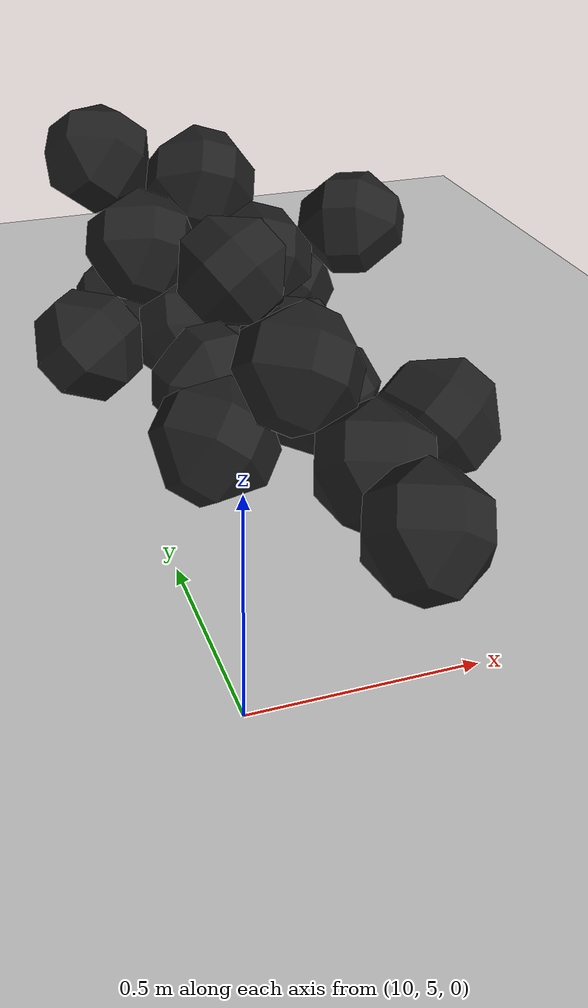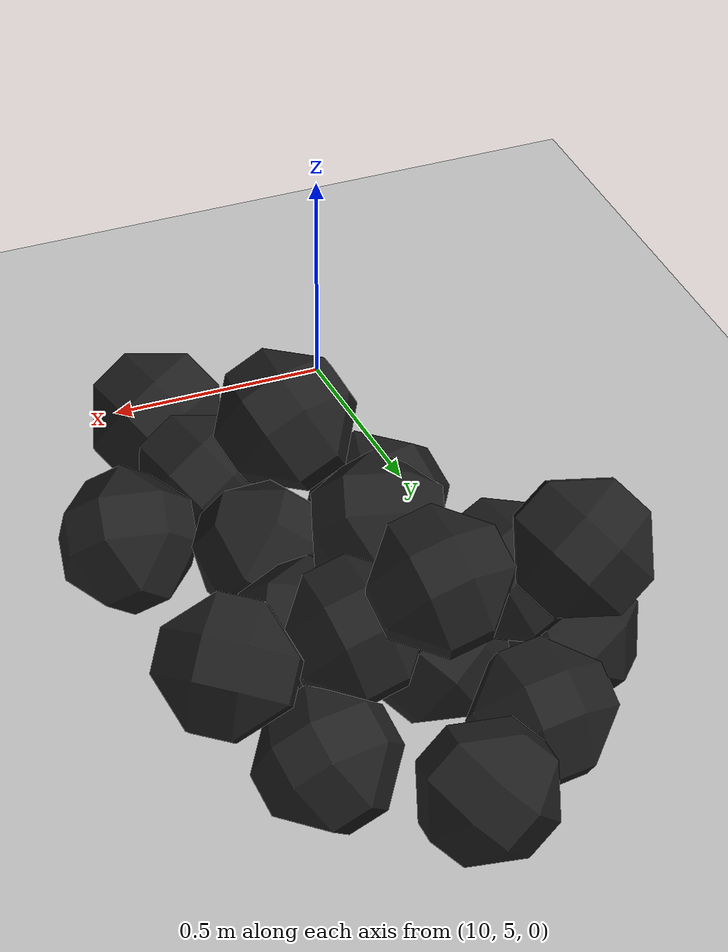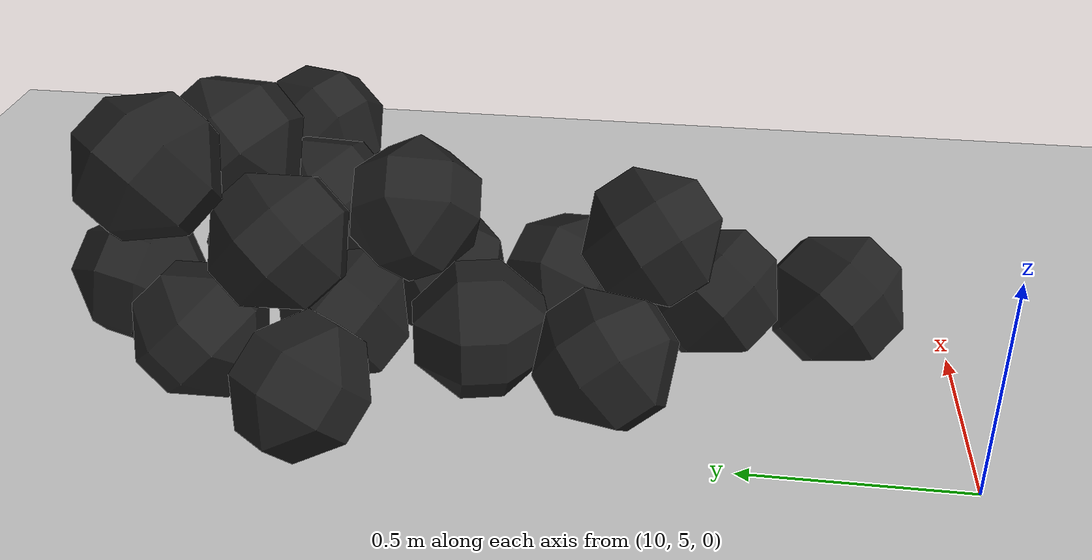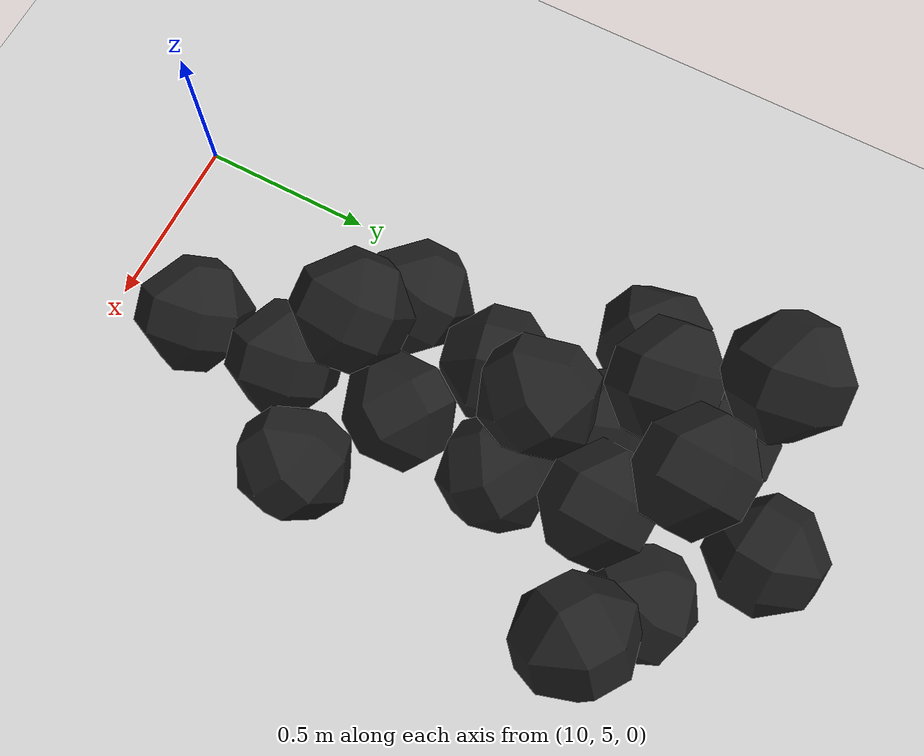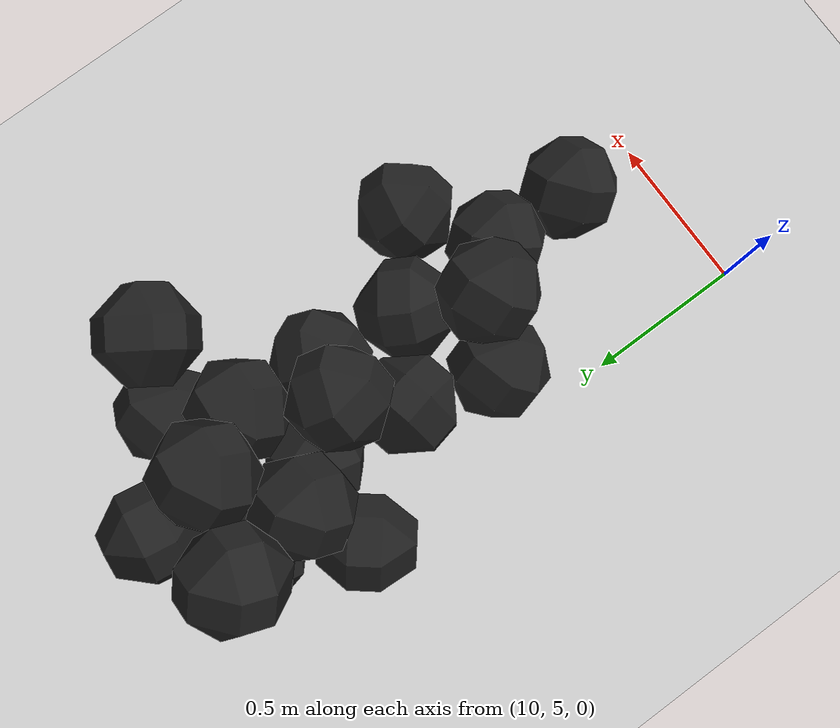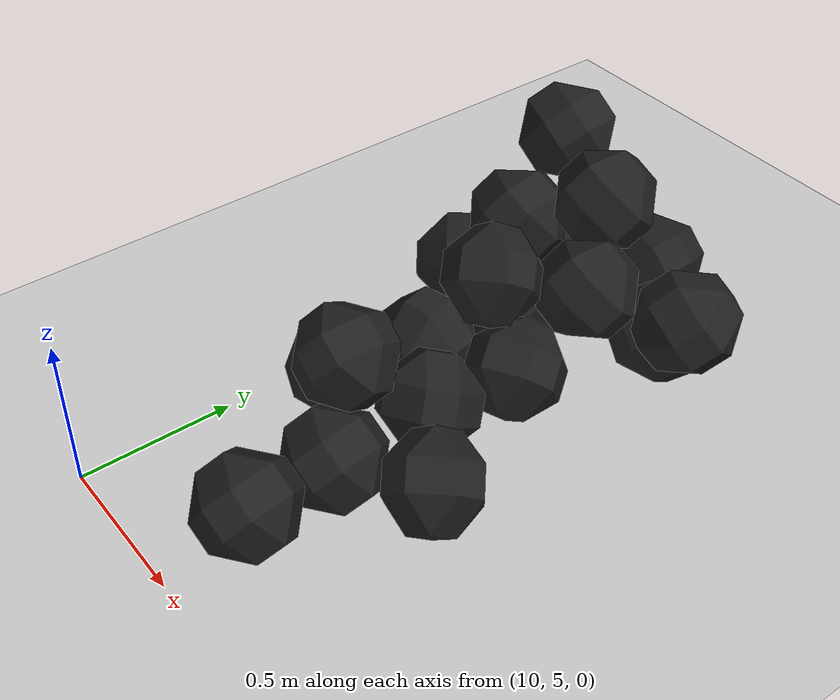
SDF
<sdf version="1.7">
 <world name="default">
  <model name="ground_plane">
   <static>1</static>
   <link name="link">
    <collision name="collision">
     <geometry><plane><normal>0 0 1</normal><size>100 100</size></plane></geometry>
     <surface><friction><ode><mu>100</mu><mu2>50</mu2></ode></friction></surface>
    </collision>
    <visual name="visual">
     <cast_shadows>0</cast_shadows>
     <geometry><plane><normal>0 0 1</normal><size>100 100</size></plane></geometry>
     <material>
      <script><uri>file://media/materials/scripts/gazebo.material</uri><name>Gazebo/Grey</name></script>
     </material>
    </visual>
   </link>
  </model>
  <model name="haoduomiantiaa_1">
   <link name="link_0">
    <inertial>
     <mass>0.2</mass>
     <inertia>
      <ixx>0.166667</ixx>
      <ixy>0</ixy>
      <ixz>0</ixz>
      <iyy>0.166667</iyy>
      <iyz>0</iyz>
      <izz>0.166667</izz>
     </inertia>
    </inertial>
    <visual name="visual">
     <geometry>
      <mesh>
       <uri>/home/lihaoyang/catkin_ws/src/pudong_gazebo/world/stl/haoduomianti.stl</uri>
       <scale>1 1 1</scale>
      </mesh>
     </geometry>
     <material>
      <lighting>1</lighting>
      <script><uri>file://media/materials/scripts/gazebo.material</uri><name>Gazebo/Black</name></script>
      <shader type="pixel"><normal_map>__default__</normal_map></shader>
      <ambient>0.3 0.3 0.3 1</ambient>
      <diffuse>0.7 0.7 0.7 1</diffuse>
      <specular>0.01 0.01 0.01 1</specular>
      <emissive>0 0 0 1</emissive>
     </material>
    </visual>
    <collision name="collision">
     <geometry>
      <mesh>
       <uri>/home/lihaoyang/catkin_ws/src/pudong_gazebo/world/stl/haoduomianti.stl</uri>
       <scale>1 1 1</scale>
      </mesh>
     </geometry>
     <surface>
      <friction>
       <ode><mu>1</mu><mu2>1</mu2><fdir1>0 0 0</fdir1><slip1>0</slip1><slip2>0</slip2></ode>
       <torsional>
        <coefficient>1</coefficient>
        <patch_radius>0</patch_radius>
        <surface_radius>0</surface_radius>
        <use_patch_radius>1</use_patch_radius>
        <ode><slip>0</slip></ode>
       </torsional>
      </friction>
      <bounce><restitution_coefficient>0</restitution_coefficient><threshold>1e+06</threshold></bounce>
      <contact>
       <collide_without_contact>0</collide_without_contact>
       <collide_without_contact_bitmask>1</collide_without_contact_bitmask>
       <collide_bitmask>1</collide_bitmask>
       <ode>
        <soft_cfm>0</soft_cfm>
        <soft_erp>0.2</soft_erp>
        <kp>1e+13</kp>
        <kd>1</kd>
        <max_vel>0.01</max_vel>
        <min_depth>0</min_depth>
       </ode>
       <bullet>
        <split_impulse>1</split_impulse>
        <split_impulse_penetration_threshold>-0.01</split_impulse_penetration_threshold>
        <soft_cfm>0</soft_cfm>
        <soft_erp>0.2</soft_erp>
        <kp>1e+13</kp>
        <kd>1</kd>
       </bullet>
      </contact>
     </surface>
    </collision>
   </link>
   <static>0</static>
   <pose>10.6609 6.68022 -0.115567 0.785417 -0.615482 0.743419</pose>
  </model>
  <model name="haoduomiantiaa_13">
   <link name="link_0">
    <inertial>
     <mass>0.2</mass>
     <inertia>
      <ixx>0.166667</ixx>
      <ixy>0</ixy>
      <ixz>0</ixz>
      <iyy>0.166667</iyy>
      <iyz>0</iyz>
      <izz>0.166667</izz>
     </inertia>
    </inertial>
    <visual name="visual">
     <geometry>
      <mesh>
       <uri>/home/lihaoyang/catkin_ws/src/pudong_gazebo/world/stl/haoduomianti.stl</uri>
       <scale>1 1 1</scale>
      </mesh>
     </geometry>
     <material>
      <lighting>1</lighting>
      <script><uri>file://media/materials/scripts/gazebo.material</uri><name>Gazebo/Black</name></script>
      <shader type="pixel"><normal_map>__default__</normal_map></shader>
      <ambient>0.3 0.3 0.3 1</ambient>
      <diffuse>0.7 0.7 0.7 1</diffuse>
      <specular>0.01 0.01 0.01 1</specular>
      <emissive>0 0 0 1</emissive>
     </material>
    </visual>
    <collision name="collision">
     <geometry>
      <mesh>
       <uri>/home/lihaoyang/catkin_ws/src/pudong_gazebo/world/stl/haoduomianti.stl</uri>
       <scale>1 1 1</scale>
      </mesh>
     </geometry>
     <surface>
      <friction>
       <ode><mu>1</mu><mu2>1</mu2><fdir1>0 0 0</fdir1><slip1>0</slip1><slip2>0</slip2></ode>
       <torsional>
        <coefficient>1</coefficient>
        <patch_radius>0</patch_radius>
        <surface_radius>0</surface_radius>
        <use_patch_radius>1</use_patch_radius>
        <ode><slip>0</slip></ode>
       </torsional>
      </friction>
      <bounce><restitution_coefficient>0</restitution_coefficient><threshold>1e+06</threshold></bounce>
      <contact>
       <collide_without_contact>0</collide_without_contact>
       <collide_without_contact_bitmask>1</collide_without_contact_bitmask>
       <collide_bitmask>1</collide_bitmask>
       <ode>
        <soft_cfm>0</soft_cfm>
        <soft_erp>0.2</soft_erp>
        <kp>1e+13</kp>
        <kd>1</kd>
        <max_vel>0.01</max_vel>
        <min_depth>0</min_depth>
       </ode>
       <bullet>
        <split_impulse>1</split_impulse>
        <split_impulse_penetration_threshold>-0.01</split_impulse_penetration_threshold>
        <soft_cfm>0</soft_cfm>
        <soft_erp>0.2</soft_erp>
        <kp>1e+13</kp>
        <kd>1</kd>
       </bullet>
      </contact>
     </surface>
    </collision>
   </link>
   <static>0</static>
   <pose>10.3819 6.81247 -0.088509 1.31188 -0.768326 -3.09991</pose>
  </model>
  <model name="haoduomiantiaa_33">
   <link name="link_0">
    <inertial>
     <mass>0.2</mass>
     <inertia>
      <ixx>0.166667</ixx>
      <ixy>0</ixy>
      <ixz>0</ixz>
      <iyy>0.166667</iyy>
      <iyz>0</iyz>
      <izz>0.166667</izz>
     </inertia>
    </inertial>
    <visual name="visual">
     <geometry>
      <mesh>
       <uri>/home/lihaoyang/catkin_ws/src/pudong_gazebo/world/stl/haoduomianti.stl</uri>
       <scale>1 1 1</scale>
      </mesh>
     </geometry>
     <material>
      <lighting>1</lighting>
      <script><uri>file://media/materials/scripts/gazebo.material</uri><name>Gazebo/Black</name></script>
      <shader type="pixel"><normal_map>__default__</normal_map></shader>
      <ambient>0.3 0.3 0.3 1</ambient>
      <diffuse>0.7 0.7 0.7 1</diffuse>
      <specular>0.01 0.01 0.01 1</specular>
      <emissive>0 0 0 1</emissive>
     </material>
    </visual>
    <collision name="collision">
     <geometry>
      <mesh>
       <uri>/home/lihaoyang/catkin_ws/src/pudong_gazebo/world/stl/haoduomianti.stl</uri>
       <scale>1 1 1</scale>
      </mesh>
     </geometry>
     <surface>
      <friction>
       <ode><mu>1</mu><mu2>1</mu2><fdir1>0 0 0</fdir1><slip1>0</slip1><slip2>0</slip2></ode>
       <torsional>
        <coefficient>1</coefficient>
        <patch_radius>0</patch_radius>
        <surface_radius>0</surface_radius>
        <use_patch_radius>1</use_patch_radius>
        <ode><slip>0</slip></ode>
       </torsional>
      </friction>
      <bounce><restitution_coefficient>0</restitution_coefficient><threshold>1e+06</threshold></bounce>
      <contact>
       <collide_without_contact>0</collide_without_contact>
       <collide_without_contact_bitmask>1</collide_without_contact_bitmask>
       <collide_bitmask>1</collide_bitmask>
       <ode>
        <soft_cfm>0</soft_cfm>
        <soft_erp>0.2</soft_erp>
        <kp>1e+13</kp>
        <kd>1</kd>
        <max_vel>0.01</max_vel>
        <min_depth>0</min_depth>
       </ode>
       <bullet>
        <split_impulse>1</split_impulse>
        <split_impulse_penetration_threshold>-0.01</split_impulse_penetration_threshold>
        <soft_cfm>0</soft_cfm>
        <soft_erp>0.2</soft_erp>
        <kp>1e+13</kp>
        <kd>1</kd>
       </bullet>
      </contact>
     </surface>
    </collision>
   </link>
   <static>0</static>
   <pose>10.2861 6.69779 -0.087637 0.246186 -0.770135 1.40953</pose>
  </model>
  <model name="haoduomiantiaa_34">
   <link name="link_0">
    <inertial>
     <mass>0.2</mass>
     <inertia>
      <ixx>0.166667</ixx>
      <ixy>0</ixy>
      <ixz>0</ixz>
      <iyy>0.166667</iyy>
      <iyz>0</iyz>
      <izz>0.166667</izz>
     </inertia>
    </inertial>
    <visual name="visual">
     <geometry>
      <mesh>
       <uri>/home/lihaoyang/catkin_ws/src/pudong_gazebo/world/stl/haoduomianti.stl</uri>
       <scale>1 1 1</scale>
      </mesh>
     </geometry>
     <material>
      <lighting>1</lighting>
      <script><uri>file://media/materials/scripts/gazebo.material</uri><name>Gazebo/Black</name></script>
      <shader type="pixel"><normal_map>__default__</normal_map></shader>
      <ambient>0.3 0.3 0.3 1</ambient>
      <diffuse>0.7 0.7 0.7 1</diffuse>
      <specular>0.01 0.01 0.01 1</specular>
      <emissive>0 0 0 1</emissive>
     </material>
    </visual>
    <collision name="collision">
     <geometry>
      <mesh>
       <uri>/home/lihaoyang/catkin_ws/src/pudong_gazebo/world/stl/haoduomianti.stl</uri>
       <scale>1 1 1</scale>
      </mesh>
     </geometry>
     <surface>
      <friction>
       <ode><mu>1</mu><mu2>1</mu2><fdir1>0 0 0</fdir1><slip1>0</slip1><slip2>0</slip2></ode>
       <torsional>
        <coefficient>1</coefficient>
        <patch_radius>0</patch_radius>
        <surface_radius>0</surface_radius>
        <use_patch_radius>1</use_patch_radius>
        <ode><slip>0</slip></ode>
       </torsional>
      </friction>
      <bounce><restitution_coefficient>0</restitution_coefficient><threshold>1e+06</threshold></bounce>
      <contact>
       <collide_without_contact>0</collide_without_contact>
       <collide_without_contact_bitmask>1</collide_without_contact_bitmask>
       <collide_bitmask>1</collide_bitmask>
       <ode>
        <soft_cfm>0</soft_cfm>
        <soft_erp>0.2</soft_erp>
        <kp>1e+13</kp>
        <kd>1</kd>
        <max_vel>0.01</max_vel>
        <min_depth>0</min_depth>
       </ode>
       <bullet>
        <split_impulse>1</split_impulse>
        <split_impulse_penetration_threshold>-0.01</split_impulse_penetration_threshold>
        <soft_cfm>0</soft_cfm>
        <soft_erp>0.2</soft_erp>
        <kp>1e+13</kp>
        <kd>1</kd>
       </bullet>
      </contact>
     </surface>
    </collision>
   </link>
   <static>0</static>
   <pose>10.2843 6.39895 -0.115732 0.785291 -0.615503 -0.710447</pose>
  </model>
  <model name="haoduomiantiaa_37">
   <link name="link_0">
    <inertial>
     <mass>0.2</mass>
     <inertia>
      <ixx>0.166667</ixx>
      <ixy>0</ixy>
      <ixz>0</ixz>
      <iyy>0.166667</iyy>
      <iyz>0</iyz>
      <izz>0.166667</izz>
     </inertia>
    </inertial>
    <visual name="visual">
     <geometry>
      <mesh>
       <uri>/home/lihaoyang/catkin_ws/src/pudong_gazebo/world/stl/haoduomianti.stl</uri>
       <scale>1 1 1</scale>
      </mesh>
     </geometry>
     <material>
      <lighting>1</lighting>
      <script><uri>file://media/materials/scripts/gazebo.material</uri><name>Gazebo/Black</name></script>
      <shader type="pixel"><normal_map>__default__</normal_map></shader>
      <ambient>0.3 0.3 0.3 1</ambient>
      <diffuse>0.7 0.7 0.7 1</diffuse>
      <specular>0.01 0.01 0.01 1</specular>
      <emissive>0 0 0 1</emissive>
     </material>
    </visual>
    <collision name="collision">
     <geometry>
      <mesh>
       <uri>/home/lihaoyang/catkin_ws/src/pudong_gazebo/world/stl/haoduomianti.stl</uri>
       <scale>1 1 1</scale>
      </mesh>
     </geometry>
     <surface>
      <friction>
       <ode><mu>1</mu><mu2>1</mu2><fdir1>0 0 0</fdir1><slip1>0</slip1><slip2>0</slip2></ode>
       <torsional>
        <coefficient>1</coefficient>
        <patch_radius>0</patch_radius>
        <surface_radius>0</surface_radius>
        <use_patch_radius>1</use_patch_radius>
        <ode><slip>0</slip></ode>
       </torsional>
      </friction>
      <bounce><restitution_coefficient>0</restitution_coefficient><threshold>1e+06</threshold></bounce>
      <contact>
       <collide_without_contact>0</collide_without_contact>
       <collide_without_contact_bitmask>1</collide_without_contact_bitmask>
       <collide_bitmask>1</collide_bitmask>
       <ode>
        <soft_cfm>0</soft_cfm>
        <soft_erp>0.2</soft_erp>
        <kp>1e+13</kp>
        <kd>1</kd>
        <max_vel>0.01</max_vel>
        <min_depth>0</min_depth>
       </ode>
       <bullet>
        <split_impulse>1</split_impulse>
        <split_impulse_penetration_threshold>-0.01</split_impulse_penetration_threshold>
        <soft_cfm>0</soft_cfm>
        <soft_erp>0.2</soft_erp>
        <kp>1e+13</kp>
        <kd>1</kd>
       </bullet>
      </contact>
     </surface>
    </collision>
   </link>
   <static>0</static>
   <pose>10.3628 6.25365 -0.002096 1.53299 -1.55126 0.25667</pose>
  </model>
  <model name="haoduomiantiaa_52">
   <link name="link_0">
    <inertial>
     <mass>0.2</mass>
     <inertia>
      <ixx>0.166667</ixx>
      <ixy>0</ixy>
      <ixz>0</ixz>
      <iyy>0.166667</iyy>
      <iyz>0</iyz>
      <izz>0.166667</izz>
     </inertia>
    </inertial>
    <visual name="visual">
     <geometry>
      <mesh>
       <uri>/home/lihaoyang/catkin_ws/src/pudong_gazebo/world/stl/haoduomianti.stl</uri>
       <scale>1 1 1</scale>
      </mesh>
     </geometry>
     <material>
      <lighting>1</lighting>
      <script><uri>file://media/materials/scripts/gazebo.material</uri><name>Gazebo/Black</name></script>
      <shader type="pixel"><normal_map>__default__</normal_map></shader>
      <ambient>0.3 0.3 0.3 1</ambient>
      <diffuse>0.7 0.7 0.7 1</diffuse>
      <specular>0.01 0.01 0.01 1</specular>
      <emissive>0 0 0 1</emissive>
     </material>
    </visual>
    <collision name="collision">
     <geometry>
      <mesh>
       <uri>/home/lihaoyang/catkin_ws/src/pudong_gazebo/world/stl/haoduomianti.stl</uri>
       <scale>1 1 1</scale>
      </mesh>
     </geometry>
     <surface>
      <friction>
       <ode><mu>1</mu><mu2>1</mu2><fdir1>0 0 0</fdir1><slip1>0</slip1><slip2>0</slip2></ode>
       <torsional>
        <coefficient>1</coefficient>
        <patch_radius>0</patch_radius>
        <surface_radius>0</surface_radius>
        <use_patch_radius>1</use_patch_radius>
        <ode><slip>0</slip></ode>
       </torsional>
      </friction>
      <bounce><restitution_coefficient>0</restitution_coefficient><threshold>1e+06</threshold></bounce>
      <contact>
       <collide_without_contact>0</collide_without_contact>
       <collide_without_contact_bitmask>1</collide_without_contact_bitmask>
       <collide_bitmask>1</collide_bitmask>
       <ode>
        <soft_cfm>0</soft_cfm>
        <soft_erp>0.2</soft_erp>
        <kp>1e+13</kp>
        <kd>1</kd>
        <max_vel>0.01</max_vel>
        <min_depth>0</min_depth>
       </ode>
       <bullet>
        <split_impulse>1</split_impulse>
        <split_impulse_penetration_threshold>-0.01</split_impulse_penetration_threshold>
        <soft_cfm>0</soft_cfm>
        <soft_erp>0.2</soft_erp>
        <kp>1e+13</kp>
        <kd>1</kd>
       </bullet>
      </contact>
     </surface>
    </collision>
   </link>
   <static>0</static>
   <pose>10.0876 6.53623 -0.070709 -9e-06 -0.785392 2.46276</pose>
  </model>
  <model name="haoduomiantiaa_63">
   <link name="link_0">
    <inertial>
     <mass>0.2</mass>
     <inertia>
      <ixx>0.166667</ixx>
      <ixy>0</ixy>
      <ixz>0</ixz>
      <iyy>0.166667</iyy>
      <iyz>0</iyz>
      <izz>0.166667</izz>
     </inertia>
    </inertial>
    <visual name="visual">
     <geometry>
      <mesh>
       <uri>/home/lihaoyang/catkin_ws/src/pudong_gazebo/world/stl/haoduomianti.stl</uri>
       <scale>1 1 1</scale>
      </mesh>
     </geometry>
     <material>
      <lighting>1</lighting>
      <script><uri>file://media/materials/scripts/gazebo.material</uri><name>Gazebo/Black</name></script>
      <shader type="pixel"><normal_map>__default__</normal_map></shader>
      <ambient>0.3 0.3 0.3 1</ambient>
      <diffuse>0.7 0.7 0.7 1</diffuse>
      <specular>0.01 0.01 0.01 1</specular>
      <emissive>0 0 0 1</emissive>
     </material>
    </visual>
    <collision name="collision">
     <geometry>
      <mesh>
       <uri>/home/lihaoyang/catkin_ws/src/pudong_gazebo/world/stl/haoduomianti.stl</uri>
       <scale>1 1 1</scale>
      </mesh>
     </geometry>
     <surface>
      <friction>
       <ode><mu>1</mu><mu2>1</mu2><fdir1>0 0 0</fdir1><slip1>0</slip1><slip2>0</slip2></ode>
       <torsional>
        <coefficient>1</coefficient>
        <patch_radius>0</patch_radius>
        <surface_radius>0</surface_radius>
        <use_patch_radius>1</use_patch_radius>
        <ode><slip>0</slip></ode>
       </torsional>
      </friction>
      <bounce><restitution_coefficient>0</restitution_coefficient><threshold>1e+06</threshold></bounce>
      <contact>
       <collide_without_contact>0</collide_without_contact>
       <collide_without_contact_bitmask>1</collide_without_contact_bitmask>
       <collide_bitmask>1</collide_bitmask>
       <ode>
        <soft_cfm>0</soft_cfm>
        <soft_erp>0.2</soft_erp>
        <kp>1e+13</kp>
        <kd>1</kd>
        <max_vel>0.01</max_vel>
        <min_depth>0</min_depth>
       </ode>
       <bullet>
        <split_impulse>1</split_impulse>
        <split_impulse_penetration_threshold>-0.01</split_impulse_penetration_threshold>
        <soft_cfm>0</soft_cfm>
        <soft_erp>0.2</soft_erp>
        <kp>1e+13</kp>
        <kd>1</kd>
       </bullet>
      </contact>
     </surface>
    </collision>
   </link>
   <static>0</static>
   <pose>10.3612 6.26777 0.133001 0.683541 -0.703823 2.33242</pose>
  </model>
  <model name="haoduomiantiaa_64">
   <link name="link_0">
    <inertial>
     <mass>0.2</mass>
     <inertia>
      <ixx>0.166667</ixx>
      <ixy>0</ixy>
      <ixz>0</ixz>
      <iyy>0.166667</iyy>
      <iyz>0</iyz>
      <izz>0.166667</izz>
     </inertia>
    </inertial>
    <visual name="visual">
     <geometry>
      <mesh>
       <uri>/home/lihaoyang/catkin_ws/src/pudong_gazebo/world/stl/haoduomianti.stl</uri>
       <scale>1 1 1</scale>
      </mesh>
     </geometry>
     <material>
      <lighting>1</lighting>
      <script><uri>file://media/materials/scripts/gazebo.material</uri><name>Gazebo/Black</name></script>
      <shader type="pixel"><normal_map>__default__</normal_map></shader>
      <ambient>0.3 0.3 0.3 1</ambient>
      <diffuse>0.7 0.7 0.7 1</diffuse>
      <specular>0.01 0.01 0.01 1</specular>
      <emissive>0 0 0 1</emissive>
     </material>
    </visual>
    <collision name="collision">
     <geometry>
      <mesh>
       <uri>/home/lihaoyang/catkin_ws/src/pudong_gazebo/world/stl/haoduomianti.stl</uri>
       <scale>1 1 1</scale>
      </mesh>
     </geometry>
     <surface>
      <friction>
       <ode><mu>1</mu><mu2>1</mu2><fdir1>0 0 0</fdir1><slip1>0</slip1><slip2>0</slip2></ode>
       <torsional>
        <coefficient>1</coefficient>
        <patch_radius>0</patch_radius>
        <surface_radius>0</surface_radius>
        <use_patch_radius>1</use_patch_radius>
        <ode><slip>0</slip></ode>
       </torsional>
      </friction>
      <bounce><restitution_coefficient>0</restitution_coefficient><threshold>1e+06</threshold></bounce>
      <contact>
       <collide_without_contact>0</collide_without_contact>
       <collide_without_contact_bitmask>1</collide_without_contact_bitmask>
       <collide_bitmask>1</collide_bitmask>
       <ode>
        <soft_cfm>0</soft_cfm>
        <soft_erp>0.2</soft_erp>
        <kp>1e+13</kp>
        <kd>1</kd>
        <max_vel>0.01</max_vel>
        <min_depth>0</min_depth>
       </ode>
       <bullet>
        <split_impulse>1</split_impulse>
        <split_impulse_penetration_threshold>-0.01</split_impulse_penetration_threshold>
        <soft_cfm>0</soft_cfm>
        <soft_erp>0.2</soft_erp>
        <kp>1e+13</kp>
        <kd>1</kd>
       </bullet>
      </contact>
     </surface>
    </collision>
   </link>
   <static>0</static>
   <pose>10.5088 6.0014 -0.080948 0.436202 -0.916747 2.21189</pose>
  </model>
  <model name="haoduomiantiaa_67">
   <link name="link_0">
    <inertial>
     <mass>0.2</mass>
     <inertia>
      <ixx>0.166667</ixx>
      <ixy>0</ixy>
      <ixz>0</ixz>
      <iyy>0.166667</iyy>
      <iyz>0</iyz>
      <izz>0.166667</izz>
     </inertia>
    </inertial>
    <visual name="visual">
     <geometry>
      <mesh>
       <uri>/home/lihaoyang/catkin_ws/src/pudong_gazebo/world/stl/haoduomianti.stl</uri>
       <scale>1 1 1</scale>
      </mesh>
     </geometry>
     <material>
      <lighting>1</lighting>
      <script><uri>file://media/materials/scripts/gazebo.material</uri><name>Gazebo/Black</name></script>
      <shader type="pixel"><normal_map>__default__</normal_map></shader>
      <ambient>0.3 0.3 0.3 1</ambient>
      <diffuse>0.7 0.7 0.7 1</diffuse>
      <specular>0.01 0.01 0.01 1</specular>
      <emissive>0 0 0 1</emissive>
     </material>
    </visual>
    <collision name="collision">
     <geometry>
      <mesh>
       <uri>/home/lihaoyang/catkin_ws/src/pudong_gazebo/world/stl/haoduomianti.stl</uri>
       <scale>1 1 1</scale>
      </mesh>
     </geometry>
     <surface>
      <friction>
       <ode><mu>1</mu><mu2>1</mu2><fdir1>0 0 0</fdir1><slip1>0</slip1><slip2>0</slip2></ode>
       <torsional>
        <coefficient>1</coefficient>
        <patch_radius>0</patch_radius>
        <surface_radius>0</surface_radius>
        <use_patch_radius>1</use_patch_radius>
        <ode><slip>0</slip></ode>
       </torsional>
      </friction>
      <bounce><restitution_coefficient>0</restitution_coefficient><threshold>1e+06</threshold></bounce>
      <contact>
       <collide_without_contact>0</collide_without_contact>
       <collide_without_contact_bitmask>1</collide_without_contact_bitmask>
       <collide_bitmask>1</collide_bitmask>
       <ode>
        <soft_cfm>0</soft_cfm>
        <soft_erp>0.2</soft_erp>
        <kp>1e+13</kp>
        <kd>1</kd>
        <max_vel>0.01</max_vel>
        <min_depth>0</min_depth>
       </ode>
       <bullet>
        <split_impulse>1</split_impulse>
        <split_impulse_penetration_threshold>-0.01</split_impulse_penetration_threshold>
        <soft_cfm>0</soft_cfm>
        <soft_erp>0.2</soft_erp>
        <kp>1e+13</kp>
        <kd>1</kd>
       </bullet>
      </contact>
     </surface>
    </collision>
   </link>
   <static>0</static>
   <pose>10.1773 5.78691 -0.115541 0.785402 -0.615473 -1.31317</pose>
  </model>
  <model name="haoduomiantiaa_71">
   <link name="link_0">
    <inertial>
     <mass>0.2</mass>
     <inertia>
      <ixx>0.166667</ixx>
      <ixy>0</ixy>
      <ixz>0</ixz>
      <iyy>0.166667</iyy>
      <iyz>0</iyz>
      <izz>0.166667</izz>
     </inertia>
    </inertial>
    <visual name="visual">
     <geometry>
      <mesh>
       <uri>/home/lihaoyang/catkin_ws/src/pudong_gazebo/world/stl/haoduomianti.stl</uri>
       <scale>1 1 1</scale>
      </mesh>
     </geometry>
     <material>
      <lighting>1</lighting>
      <script><uri>file://media/materials/scripts/gazebo.material</uri><name>Gazebo/Black</name></script>
      <shader type="pixel"><normal_map>__default__</normal_map></shader>
      <ambient>0.3 0.3 0.3 1</ambient>
      <diffuse>0.7 0.7 0.7 1</diffuse>
      <specular>0.01 0.01 0.01 1</specular>
      <emissive>0 0 0 1</emissive>
     </material>
    </visual>
    <collision name="collision">
     <geometry>
      <mesh>
       <uri>/home/lihaoyang/catkin_ws/src/pudong_gazebo/world/stl/haoduomianti.stl</uri>
       <scale>1 1 1</scale>
      </mesh>
     </geometry>
     <surface>
      <friction>
       <ode><mu>1</mu><mu2>1</mu2><fdir1>0 0 0</fdir1><slip1>0</slip1><slip2>0</slip2></ode>
       <torsional>
        <coefficient>1</coefficient>
        <patch_radius>0</patch_radius>
        <surface_radius>0</surface_radius>
        <use_patch_radius>1</use_patch_radius>
        <ode><slip>0</slip></ode>
       </torsional>
      </friction>
      <bounce><restitution_coefficient>0</restitution_coefficient><threshold>1e+06</threshold></bounce>
      <contact>
       <collide_without_contact>0</collide_without_contact>
       <collide_without_contact_bitmask>1</collide_without_contact_bitmask>
       <collide_bitmask>1</collide_bitmask>
       <ode>
        <soft_cfm>0</soft_cfm>
        <soft_erp>0.2</soft_erp>
        <kp>1e+13</kp>
        <kd>1</kd>
        <max_vel>0.01</max_vel>
        <min_depth>0</min_depth>
       </ode>
       <bullet>
        <split_impulse>1</split_impulse>
        <split_impulse_penetration_threshold>-0.01</split_impulse_penetration_threshold>
        <soft_cfm>0</soft_cfm>
        <soft_erp>0.2</soft_erp>
        <kp>1e+13</kp>
        <kd>1</kd>
       </bullet>
      </contact>
     </surface>
    </collision>
   </link>
   <static>0</static>
   <pose>10.4997 5.55606 -0.115499 0.785364 -0.61549 1.17752</pose>
  </model>
  <model name="haoduomiantiaa_75">
   <link name="link_0">
    <inertial>
     <mass>0.2</mass>
     <inertia>
      <ixx>0.166667</ixx>
      <ixy>0</ixy>
      <ixz>0</ixz>
      <iyy>0.166667</iyy>
      <iyz>0</iyz>
      <izz>0.166667</izz>
     </inertia>
    </inertial>
    <visual name="visual">
     <geometry>
      <mesh>
       <uri>/home/lihaoyang/catkin_ws/src/pudong_gazebo/world/stl/haoduomianti.stl</uri>
       <scale>1 1 1</scale>
      </mesh>
     </geometry>
     <material>
      <lighting>1</lighting>
      <script><uri>file://media/materials/scripts/gazebo.material</uri><name>Gazebo/Black</name></script>
      <shader type="pixel"><normal_map>__default__</normal_map></shader>
      <ambient>0.3 0.3 0.3 1</ambient>
      <diffuse>0.7 0.7 0.7 1</diffuse>
      <specular>0.01 0.01 0.01 1</specular>
      <emissive>0 0 0 1</emissive>
     </material>
    </visual>
    <collision name="collision">
     <geometry>
      <mesh>
       <uri>/home/lihaoyang/catkin_ws/src/pudong_gazebo/world/stl/haoduomianti.stl</uri>
       <scale>1 1 1</scale>
      </mesh>
     </geometry>
     <surface>
      <friction>
       <ode><mu>1</mu><mu2>1</mu2><fdir1>0 0 0</fdir1><slip1>0</slip1><slip2>0</slip2></ode>
       <torsional>
        <coefficient>1</coefficient>
        <patch_radius>0</patch_radius>
        <surface_radius>0</surface_radius>
        <use_patch_radius>1</use_patch_radius>
        <ode><slip>0</slip></ode>
       </torsional>
      </friction>
      <bounce><restitution_coefficient>0</restitution_coefficient><threshold>1e+06</threshold></bounce>
      <contact>
       <collide_without_contact>0</collide_without_contact>
       <collide_without_contact_bitmask>1</collide_without_contact_bitmask>
       <collide_bitmask>1</collide_bitmask>
       <ode>
        <soft_cfm>0</soft_cfm>
        <soft_erp>0.2</soft_erp>
        <kp>1e+13</kp>
        <kd>1</kd>
        <max_vel>0.01</max_vel>
        <min_depth>0</min_depth>
       </ode>
       <bullet>
        <split_impulse>1</split_impulse>
        <split_impulse_penetration_threshold>-0.01</split_impulse_penetration_threshold>
        <soft_cfm>0</soft_cfm>
        <soft_erp>0.2</soft_erp>
        <kp>1e+13</kp>
        <kd>1</kd>
       </bullet>
      </contact>
     </surface>
    </collision>
   </link>
   <static>0</static>
   <pose>10.7443 5.72474 -0.114774 0.78563 -0.615432 -1.75605</pose>
  </model>
  <model name="haoduomiantiaa_77">
   <link name="link_0">
    <inertial>
     <mass>0.2</mass>
     <inertia>
      <ixx>0.166667</ixx>
      <ixy>0</ixy>
      <ixz>0</ixz>
      <iyy>0.166667</iyy>
      <iyz>0</iyz>
      <izz>0.166667</izz>
     </inertia>
    </inertial>
    <visual name="visual">
     <geometry>
      <mesh>
       <uri>/home/lihaoyang/catkin_ws/src/pudong_gazebo/world/stl/haoduomianti.stl</uri>
       <scale>1 1 1</scale>
      </mesh>
     </geometry>
     <material>
      <lighting>1</lighting>
      <script><uri>file://media/materials/scripts/gazebo.material</uri><name>Gazebo/Black</name></script>
      <shader type="pixel"><normal_map>__default__</normal_map></shader>
      <ambient>0.3 0.3 0.3 1</ambient>
      <diffuse>0.7 0.7 0.7 1</diffuse>
      <specular>0.01 0.01 0.01 1</specular>
      <emissive>0 0 0 1</emissive>
     </material>
    </visual>
    <collision name="collision">
     <geometry>
      <mesh>
       <uri>/home/lihaoyang/catkin_ws/src/pudong_gazebo/world/stl/haoduomianti.stl</uri>
       <scale>1 1 1</scale>
      </mesh>
     </geometry>
     <surface>
      <friction>
       <ode><mu>1</mu><mu2>1</mu2><fdir1>0 0 0</fdir1><slip1>0</slip1><slip2>0</slip2></ode>
       <torsional>
        <coefficient>1</coefficient>
        <patch_radius>0</patch_radius>
        <surface_radius>0</surface_radius>
        <use_patch_radius>1</use_patch_radius>
        <ode><slip>0</slip></ode>
       </torsional>
      </friction>
      <bounce><restitution_coefficient>0</restitution_coefficient><threshold>1e+06</threshold></bounce>
      <contact>
       <collide_without_contact>0</collide_without_contact>
       <collide_without_contact_bitmask>1</collide_without_contact_bitmask>
       <collide_bitmask>1</collide_bitmask>
       <ode>
        <soft_cfm>0</soft_cfm>
        <soft_erp>0.2</soft_erp>
        <kp>1e+13</kp>
        <kd>1</kd>
        <max_vel>0.01</max_vel>
        <min_depth>0</min_depth>
       </ode>
       <bullet>
        <split_impulse>1</split_impulse>
        <split_impulse_penetration_threshold>-0.01</split_impulse_penetration_threshold>
        <soft_cfm>0</soft_cfm>
        <soft_erp>0.2</soft_erp>
        <kp>1e+13</kp>
        <kd>1</kd>
       </bullet>
      </contact>
     </surface>
    </collision>
   </link>
   <static>0</static>
   <pose>10.5229 6.20811 -0.115421 0.78533 -0.615541 2.10763</pose>
  </model>
  <model name="haoduomiantiaa_82">
   <link name="link_0">
    <inertial>
     <mass>0.2</mass>
     <inertia>
      <ixx>0.166667</ixx>
      <ixy>0</ixy>
      <ixz>0</ixz>
      <iyy>0.166667</iyy>
      <iyz>0</iyz>
      <izz>0.166667</izz>
     </inertia>
    </inertial>
    <visual name="visual">
     <geometry>
      <mesh>
       <uri>/home/lihaoyang/catkin_ws/src/pudong_gazebo/world/stl/haoduomianti.stl</uri>
       <scale>1 1 1</scale>
      </mesh>
     </geometry>
     <material>
      <lighting>1</lighting>
      <script><uri>file://media/materials/scripts/gazebo.material</uri><name>Gazebo/Black</name></script>
      <shader type="pixel"><normal_map>__default__</normal_map></shader>
      <ambient>0.3 0.3 0.3 1</ambient>
      <diffuse>0.7 0.7 0.7 1</diffuse>
      <specular>0.01 0.01 0.01 1</specular>
      <emissive>0 0 0 1</emissive>
     </material>
    </visual>
    <collision name="collision">
     <geometry>
      <mesh>
       <uri>/home/lihaoyang/catkin_ws/src/pudong_gazebo/world/stl/haoduomianti.stl</uri>
       <scale>1 1 1</scale>
      </mesh>
     </geometry>
     <surface>
      <friction>
       <ode><mu>1</mu><mu2>1</mu2><fdir1>0 0 0</fdir1><slip1>0</slip1><slip2>0</slip2></ode>
       <torsional>
        <coefficient>1</coefficient>
        <patch_radius>0</patch_radius>
        <surface_radius>0</surface_radius>
        <use_patch_radius>1</use_patch_radius>
        <ode><slip>0</slip></ode>
       </torsional>
      </friction>
      <bounce><restitution_coefficient>0</restitution_coefficient><threshold>1e+06</threshold></bounce>
      <contact>
       <collide_without_contact>0</collide_without_contact>
       <collide_without_contact_bitmask>1</collide_without_contact_bitmask>
       <collide_bitmask>1</collide_bitmask>
       <ode>
        <soft_cfm>0</soft_cfm>
        <soft_erp>0.2</soft_erp>
        <kp>1e+13</kp>
        <kd>1</kd>
        <max_vel>0.01</max_vel>
        <min_depth>0</min_depth>
       </ode>
       <bullet>
        <split_impulse>1</split_impulse>
        <split_impulse_penetration_threshold>-0.01</split_impulse_penetration_threshold>
        <soft_cfm>0</soft_cfm>
        <soft_erp>0.2</soft_erp>
        <kp>1e+13</kp>
        <kd>1</kd>
       </bullet>
      </contact>
     </surface>
    </collision>
   </link>
   <static>0</static>
   <pose>10.3852 5.72774 0.09622 0.761232 -0.745865 0.943049</pose>
  </model>
  <model name="haoduomiantiaa_85">
   <link name="link_0">
    <inertial>
     <mass>0.2</mass>
     <inertia>
      <ixx>0.166667</ixx>
      <ixy>0</ixy>
      <ixz>0</ixz>
      <iyy>0.166667</iyy>
      <iyz>0</iyz>
      <izz>0.166667</izz>
     </inertia>
    </inertial>
    <visual name="visual">
     <geometry>
      <mesh>
       <uri>/home/lihaoyang/catkin_ws/src/pudong_gazebo/world/stl/haoduomianti.stl</uri>
       <scale>1 1 1</scale>
      </mesh>
     </geometry>
     <material>
      <lighting>1</lighting>
      <script><uri>file://media/materials/scripts/gazebo.material</uri><name>Gazebo/Black</name></script>
      <shader type="pixel"><normal_map>__default__</normal_map></shader>
      <ambient>0.3 0.3 0.3 1</ambient>
      <diffuse>0.7 0.7 0.7 1</diffuse>
      <specular>0.01 0.01 0.01 1</specular>
      <emissive>0 0 0 1</emissive>
     </material>
    </visual>
    <collision name="collision">
     <geometry>
      <mesh>
       <uri>/home/lihaoyang/catkin_ws/src/pudong_gazebo/world/stl/haoduomianti.stl</uri>
       <scale>1 1 1</scale>
      </mesh>
     </geometry>
     <surface>
      <friction>
       <ode><mu>1</mu><mu2>1</mu2><fdir1>0 0 0</fdir1><slip1>0</slip1><slip2>0</slip2></ode>
       <torsional>
        <coefficient>1</coefficient>
        <patch_radius>0</patch_radius>
        <surface_radius>0</surface_radius>
        <use_patch_radius>1</use_patch_radius>
        <ode><slip>0</slip></ode>
       </torsional>
      </friction>
      <bounce><restitution_coefficient>0</restitution_coefficient><threshold>1e+06</threshold></bounce>
      <contact>
       <collide_without_contact>0</collide_without_contact>
       <collide_without_contact_bitmask>1</collide_without_contact_bitmask>
       <collide_bitmask>1</collide_bitmask>
       <ode>
        <soft_cfm>0</soft_cfm>
        <soft_erp>0.2</soft_erp>
        <kp>1e+13</kp>
        <kd>1</kd>
        <max_vel>0.01</max_vel>
        <min_depth>0</min_depth>
       </ode>
       <bullet>
        <split_impulse>1</split_impulse>
        <split_impulse_penetration_threshold>-0.01</split_impulse_penetration_threshold>
        <soft_cfm>0</soft_cfm>
        <soft_erp>0.2</soft_erp>
        <kp>1e+13</kp>
        <kd>1</kd>
       </bullet>
      </contact>
     </surface>
    </collision>
   </link>
   <static>0</static>
   <pose>10.7262 6.61471 0.129708 0.645687 -0.135312 -0.586964</pose>
  </model>
  <model name="haoduomiantiaa_87">
   <link name="link_0">
    <inertial>
     <mass>0.2</mass>
     <inertia>
      <ixx>0.166667</ixx>
      <ixy>0</ixy>
      <ixz>0</ixz>
      <iyy>0.166667</iyy>
      <iyz>0</iyz>
      <izz>0.166667</izz>
     </inertia>
    </inertial>
    <visual name="visual">
     <geometry>
      <mesh>
       <uri>/home/lihaoyang/catkin_ws/src/pudong_gazebo/world/stl/haoduomianti.stl</uri>
       <scale>1 1 1</scale>
      </mesh>
     </geometry>
     <material>
      <lighting>1</lighting>
      <script><uri>file://media/materials/scripts/gazebo.material</uri><name>Gazebo/Black</name></script>
      <shader type="pixel"><normal_map>__default__</normal_map></shader>
      <ambient>0.3 0.3 0.3 1</ambient>
      <diffuse>0.7 0.7 0.7 1</diffuse>
      <specular>0.01 0.01 0.01 1</specular>
      <emissive>0 0 0 1</emissive>
     </material>
    </visual>
    <collision name="collision">
     <geometry>
      <mesh>
       <uri>/home/lihaoyang/catkin_ws/src/pudong_gazebo/world/stl/haoduomianti.stl</uri>
       <scale>1 1 1</scale>
      </mesh>
     </geometry>
     <surface>
      <friction>
       <ode><mu>1</mu><mu2>1</mu2><fdir1>0 0 0</fdir1><slip1>0</slip1><slip2>0</slip2></ode>
       <torsional>
        <coefficient>1</coefficient>
        <patch_radius>0</patch_radius>
        <surface_radius>0</surface_radius>
        <use_patch_radius>1</use_patch_radius>
        <ode><slip>0</slip></ode>
       </torsional>
      </friction>
      <bounce><restitution_coefficient>0</restitution_coefficient><threshold>1e+06</threshold></bounce>
      <contact>
       <collide_without_contact>0</collide_without_contact>
       <collide_without_contact_bitmask>1</collide_without_contact_bitmask>
       <collide_bitmask>1</collide_bitmask>
       <ode>
        <soft_cfm>0</soft_cfm>
        <soft_erp>0.2</soft_erp>
        <kp>1e+13</kp>
        <kd>1</kd>
        <max_vel>0.01</max_vel>
        <min_depth>0</min_depth>
       </ode>
       <bullet>
        <split_impulse>1</split_impulse>
        <split_impulse_penetration_threshold>-0.01</split_impulse_penetration_threshold>
        <soft_cfm>0</soft_cfm>
        <soft_erp>0.2</soft_erp>
        <kp>1e+13</kp>
        <kd>1</kd>
       </bullet>
      </contact>
     </surface>
    </collision>
   </link>
   <static>0</static>
   <pose>10.5897 6.48827 0.066305 0.763438 -0.331202 3.09857</pose>
  </model>
  <model name="haoduomiantiaa_106">
   <link name="link_0">
    <inertial>
     <mass>0.2</mass>
     <inertia>
      <ixx>0.166667</ixx>
      <ixy>0</ixy>
      <ixz>0</ixz>
      <iyy>0.166667</iyy>
      <iyz>0</iyz>
      <izz>0.166667</izz>
     </inertia>
    </inertial>
    <visual name="visual">
     <geometry>
      <mesh>
       <uri>/home/lihaoyang/catkin_ws/src/pudong_gazebo/world/stl/haoduomianti.stl</uri>
       <scale>1 1 1</scale>
      </mesh>
     </geometry>
     <material>
      <lighting>1</lighting>
      <script><uri>file://media/materials/scripts/gazebo.material</uri><name>Gazebo/Black</name></script>
      <shader type="pixel"><normal_map>__default__</normal_map></shader>
      <ambient>0.3 0.3 0.3 1</ambient>
      <diffuse>0.7 0.7 0.7 1</diffuse>
      <specular>0.01 0.01 0.01 1</specular>
      <emissive>0 0 0 1</emissive>
     </material>
    </visual>
    <collision name="collision">
     <geometry>
      <mesh>
       <uri>/home/lihaoyang/catkin_ws/src/pudong_gazebo/world/stl/haoduomianti.stl</uri>
       <scale>1 1 1</scale>
      </mesh>
     </geometry>
     <surface>
      <friction>
       <ode><mu>1</mu><mu2>1</mu2><fdir1>0 0 0</fdir1><slip1>0</slip1><slip2>0</slip2></ode>
       <torsional>
        <coefficient>1</coefficient>
        <patch_radius>0</patch_radius>
        <surface_radius>0</surface_radius>
        <use_patch_radius>1</use_patch_radius>
        <ode><slip>0</slip></ode>
       </torsional>
      </friction>
      <bounce><restitution_coefficient>0</restitution_coefficient><threshold>1e+06</threshold></bounce>
      <contact>
       <collide_without_contact>0</collide_without_contact>
       <collide_without_contact_bitmask>1</collide_without_contact_bitmask>
       <collide_bitmask>1</collide_bitmask>
       <ode>
        <soft_cfm>0</soft_cfm>
        <soft_erp>0.2</soft_erp>
        <kp>1e+13</kp>
        <kd>1</kd>
        <max_vel>0.01</max_vel>
        <min_depth>0</min_depth>
       </ode>
       <bullet>
        <split_impulse>1</split_impulse>
        <split_impulse_penetration_threshold>-0.01</split_impulse_penetration_threshold>
        <soft_cfm>0</soft_cfm>
        <soft_erp>0.2</soft_erp>
        <kp>1e+13</kp>
        <kd>1</kd>
       </bullet>
      </contact>
     </surface>
    </collision>
   </link>
   <static>0</static>
   <pose>10.211 6.51542 0.132473 0.648091 -0.731093 1.24123</pose>
  </model>
  <model name="haoduomiantiaa_116">
   <link name="link_0">
    <inertial>
     <mass>0.2</mass>
     <inertia>
      <ixx>0.166667</ixx>
      <ixy>0</ixy>
      <ixz>0</ixz>
      <iyy>0.166667</iyy>
      <iyz>0</iyz>
      <izz>0.166667</izz>
     </inertia>
    </inertial>
    <visual name="visual">
     <geometry>
      <mesh>
       <uri>/home/lihaoyang/catkin_ws/src/pudong_gazebo/world/stl/haoduomianti.stl</uri>
       <scale>1 1 1</scale>
      </mesh>
     </geometry>
     <material>
      <lighting>1</lighting>
      <script><uri>file://media/materials/scripts/gazebo.material</uri><name>Gazebo/Black</name></script>
      <shader type="pixel"><normal_map>__default__</normal_map></shader>
      <ambient>0.3 0.3 0.3 1</ambient>
      <diffuse>0.7 0.7 0.7 1</diffuse>
      <specular>0.01 0.01 0.01 1</specular>
      <emissive>0 0 0 1</emissive>
     </material>
    </visual>
    <collision name="collision">
     <geometry>
      <mesh>
       <uri>/home/lihaoyang/catkin_ws/src/pudong_gazebo/world/stl/haoduomianti.stl</uri>
       <scale>1 1 1</scale>
      </mesh>
     </geometry>
     <surface>
      <friction>
       <ode><mu>1</mu><mu2>1</mu2><fdir1>0 0 0</fdir1><slip1>0</slip1><slip2>0</slip2></ode>
       <torsional>
        <coefficient>1</coefficient>
        <patch_radius>0</patch_radius>
        <surface_radius>0</surface_radius>
        <use_patch_radius>1</use_patch_radius>
        <ode><slip>0</slip></ode>
       </torsional>
      </friction>
      <bounce><restitution_coefficient>0</restitution_coefficient><threshold>1e+06</threshold></bounce>
      <contact>
       <collide_without_contact>0</collide_without_contact>
       <collide_without_contact_bitmask>1</collide_without_contact_bitmask>
       <collide_bitmask>1</collide_bitmask>
       <ode>
        <soft_cfm>0</soft_cfm>
        <soft_erp>0.2</soft_erp>
        <kp>1e+13</kp>
        <kd>1</kd>
        <max_vel>0.01</max_vel>
        <min_depth>0</min_depth>
       </ode>
       <bullet>
        <split_impulse>1</split_impulse>
        <split_impulse_penetration_threshold>-0.01</split_impulse_penetration_threshold>
        <soft_cfm>0</soft_cfm>
        <soft_erp>0.2</soft_erp>
        <kp>1e+13</kp>
        <kd>1</kd>
       </bullet>
      </contact>
     </surface>
    </collision>
   </link>
   <static>0</static>
   <pose>10.0968 6.72447 0.320435 0.666593 -0.638727 -0.797979</pose>
  </model>
  <model name="haoduomiantiaa_125">
   <link name="link_0">
    <inertial>
     <mass>0.2</mass>
     <inertia>
      <ixx>0.166667</ixx>
      <ixy>0</ixy>
      <ixz>0</ixz>
      <iyy>0.166667</iyy>
      <iyz>0</iyz>
      <izz>0.166667</izz>
     </inertia>
    </inertial>
    <visual name="visual">
     <geometry>
      <mesh>
       <uri>/home/lihaoyang/catkin_ws/src/pudong_gazebo/world/stl/haoduomianti.stl</uri>
       <scale>1 1 1</scale>
      </mesh>
     </geometry>
     <material>
      <lighting>1</lighting>
      <script><uri>file://media/materials/scripts/gazebo.material</uri><name>Gazebo/Black</name></script>
      <shader type="pixel"><normal_map>__default__</normal_map></shader>
      <ambient>0.3 0.3 0.3 1</ambient>
      <diffuse>0.7 0.7 0.7 1</diffuse>
      <specular>0.01 0.01 0.01 1</specular>
      <emissive>0 0 0 1</emissive>
     </material>
    </visual>
    <collision name="collision">
     <geometry>
      <mesh>
       <uri>/home/lihaoyang/catkin_ws/src/pudong_gazebo/world/stl/haoduomianti.stl</uri>
       <scale>1 1 1</scale>
      </mesh>
     </geometry>
     <surface>
      <friction>
       <ode><mu>1</mu><mu2>1</mu2><fdir1>0 0 0</fdir1><slip1>0</slip1><slip2>0</slip2></ode>
       <torsional>
        <coefficient>1</coefficient>
        <patch_radius>0</patch_radius>
        <surface_radius>0</surface_radius>
        <use_patch_radius>1</use_patch_radius>
        <ode><slip>0</slip></ode>
       </torsional>
      </friction>
      <bounce><restitution_coefficient>0</restitution_coefficient><threshold>1e+06</threshold></bounce>
      <contact>
       <collide_without_contact>0</collide_without_contact>
       <collide_without_contact_bitmask>1</collide_without_contact_bitmask>
       <collide_bitmask>1</collide_bitmask>
       <ode>
        <soft_cfm>0</soft_cfm>
        <soft_erp>0.2</soft_erp>
        <kp>1e+13</kp>
        <kd>1</kd>
        <max_vel>0.01</max_vel>
        <min_depth>0</min_depth>
       </ode>
       <bullet>
        <split_impulse>1</split_impulse>
        <split_impulse_penetration_threshold>-0.01</split_impulse_penetration_threshold>
        <soft_cfm>0</soft_cfm>
        <soft_erp>0.2</soft_erp>
        <kp>1e+13</kp>
        <kd>1</kd>
       </bullet>
      </contact>
     </surface>
    </collision>
   </link>
   <static>0</static>
   <pose>10.4709 6.6575 0.261661 0.450383 -0.767848 1.18948</pose>
  </model>
  <model name="haoduomiantiaa_134">
   <link name="link_0">
    <inertial>
     <mass>0.2</mass>
     <inertia>
      <ixx>0.166667</ixx>
      <ixy>0</ixy>
      <ixz>0</ixz>
      <iyy>0.166667</iyy>
      <iyz>0</iyz>
      <izz>0.166667</izz>
     </inertia>
    </inertial>
    <visual name="visual">
     <geometry>
      <mesh>
       <uri>/home/lihaoyang/catkin_ws/src/pudong_gazebo/world/stl/haoduomianti.stl</uri>
       <scale>1 1 1</scale>
      </mesh>
     </geometry>
     <material>
      <lighting>1</lighting>
      <script><uri>file://media/materials/scripts/gazebo.material</uri><name>Gazebo/Black</name></script>
      <shader type="pixel"><normal_map>__default__</normal_map></shader>
      <ambient>0.3 0.3 0.3 1</ambient>
      <diffuse>0.7 0.7 0.7 1</diffuse>
      <specular>0.01 0.01 0.01 1</specular>
      <emissive>0 0 0 1</emissive>
     </material>
    </visual>
    <collision name="collision">
     <geometry>
      <mesh>
       <uri>/home/lihaoyang/catkin_ws/src/pudong_gazebo/world/stl/haoduomianti.stl</uri>
       <scale>1 1 1</scale>
      </mesh>
     </geometry>
     <surface>
      <friction>
       <ode><mu>1</mu><mu2>1</mu2><fdir1>0 0 0</fdir1><slip1>0</slip1><slip2>0</slip2></ode>
       <torsional>
        <coefficient>1</coefficient>
        <patch_radius>0</patch_radius>
        <surface_radius>0</surface_radius>
        <use_patch_radius>1</use_patch_radius>
        <ode><slip>0</slip></ode>
       </torsional>
      </friction>
      <bounce><restitution_coefficient>0</restitution_coefficient><threshold>1e+06</threshold></bounce>
      <contact>
       <collide_without_contact>0</collide_without_contact>
       <collide_without_contact_bitmask>1</collide_without_contact_bitmask>
       <collide_bitmask>1</collide_bitmask>
       <ode>
        <soft_cfm>0</soft_cfm>
        <soft_erp>0.2</soft_erp>
        <kp>1e+13</kp>
        <kd>1</kd>
        <max_vel>0.01</max_vel>
        <min_depth>0</min_depth>
       </ode>
       <bullet>
        <split_impulse>1</split_impulse>
        <split_impulse_penetration_threshold>-0.01</split_impulse_penetration_threshold>
        <soft_cfm>0</soft_cfm>
        <soft_erp>0.2</soft_erp>
        <kp>1e+13</kp>
        <kd>1</kd>
       </bullet>
      </contact>
     </surface>
    </collision>
   </link>
   <static>0</static>
   <pose>10.5023 5.27115 -0.115501 0.785432 -0.615521 1.17754</pose>
  </model>
 </world>
</sdf>
